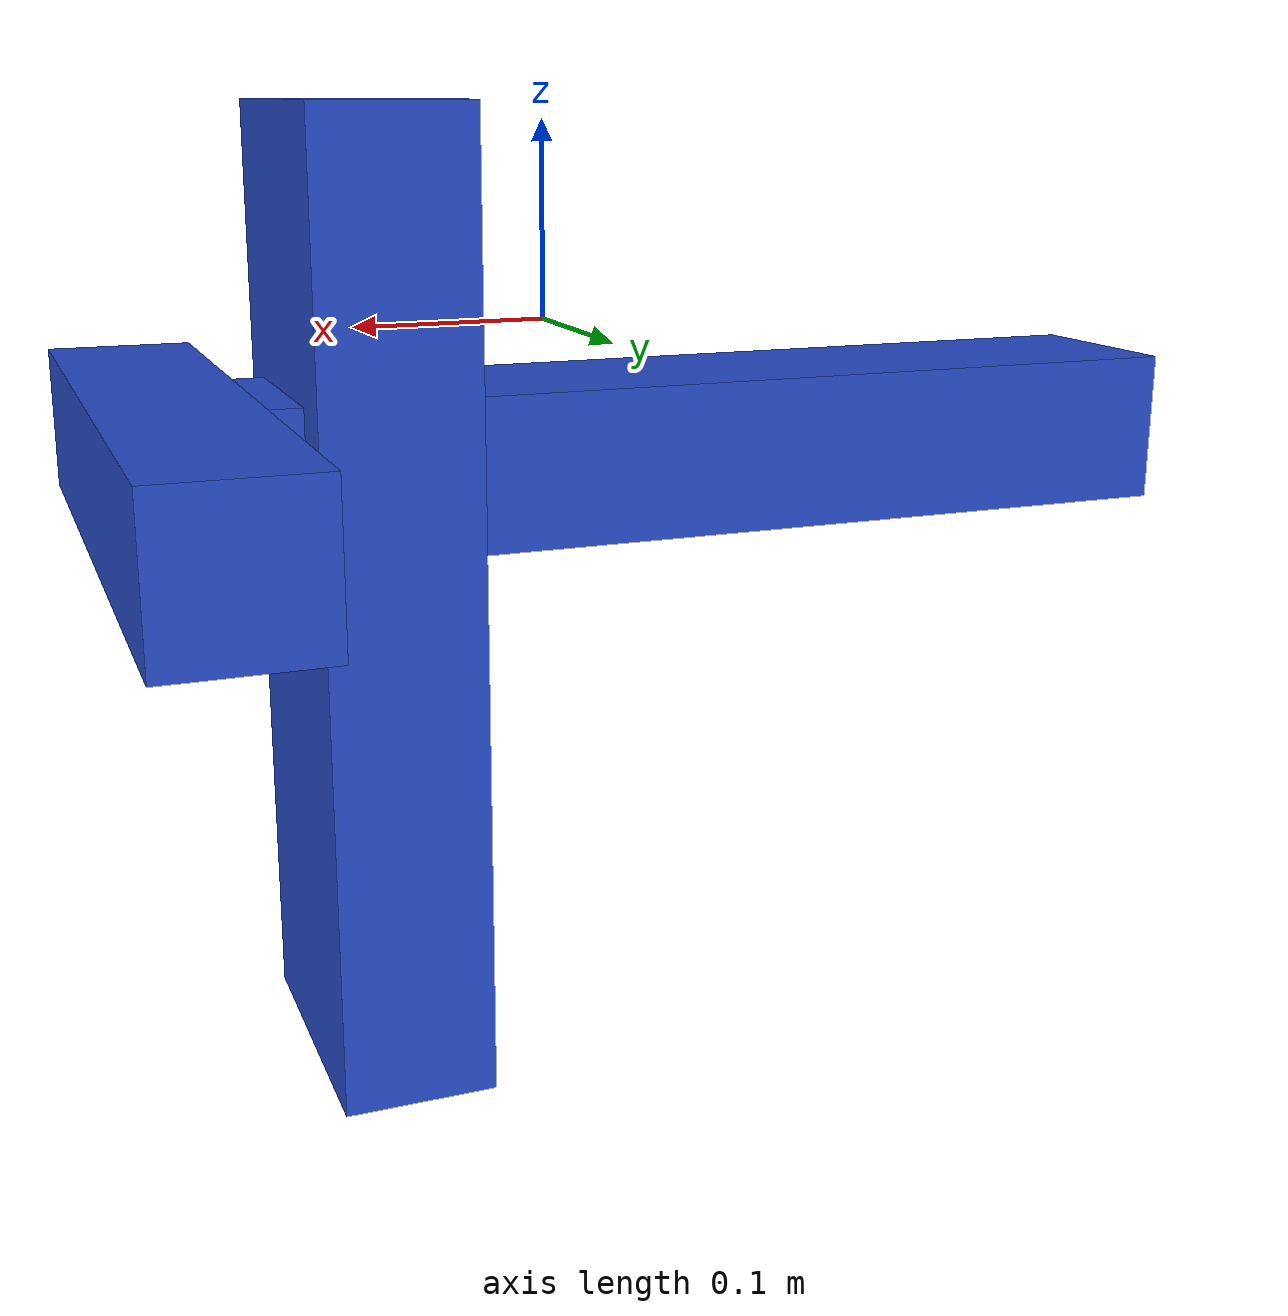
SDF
<?xml version='1.0'?>
<sdf version='1.7'>
  <model name='hook3'>
    <link name='link_0'>

      <pose>0.096667 0 -0.14 0 -0 0</pose>

      <inertial>
        <mass>0.0074989</mass>
        <inertia>
          <ixx>0.00017954</ixx>
          <ixy>0</ixy>
          <ixz>0</ixz>
          <iyy>0.0001659</iyy>
          <iyz>0</iyz>
          <izz>2.296e-05</izz>
        </inertia>
        <pose>0 0 0 0 -0 0</pose>
      </inertial>

      <kinematic>1</kinematic>

      <visual name='visual1'>
        <pose>0 0 0 0 -0 0</pose>
        <geometry>
          <box>
            <size>0.08 0.16 0.5</size>
          </box>
        </geometry>
        <material>
          <script>
            <name>Gazebo/Blue</name>
            <uri>file://media/materials/scripts/gazebo.material</uri>
          </script>
        </material>
      </visual>

      <collision name='collision1'>
        <geometry>
          <box>
            <size>0.08 0.16 0.5</size>
          </box>
        </geometry>
      </collision>

      <visual name='visual2'>
        <pose>-0.193333 0 0.07 0 -0 0</pose>
        <geometry>
          <box>
            <size>0.5 0.1 0.08</size>
          </box>
        </geometry>
        <material>
          <script>
            <name>Gazebo/Blue</name>
            <uri>file://media/materials/scripts/gazebo.material</uri>
          </script>
        </material>
      </visual>

      <collision name='collision2'>
        <pose>-0.193333 0 0.07 0 -0 0</pose>
        <geometry>
          <box>
            <size>0.5 0.1 0.08</size>
          </box>
        </geometry>
      </collision>

      <visual name='visual3'>
        <pose>0.096667 0 0.07 0 -0 0</pose>
        <geometry>
          <box>
            <size>0.08 0.4 0.080001</size>
          </box>
        </geometry>
        <material>
          <script>
            <name>Gazebo/Blue</name>
            <uri>file://media/materials/scripts/gazebo.material</uri>
          </script>
        </material>
      </visual>

      <collision name='collision3'>
        <pose>0.096667 0 0.07 0 -0 0</pose>
        <geometry>
          <box>
            <size>0.08 0.4 0.08</size>
          </box>
        </geometry>
      </collision>
    </link>
  </model>
</sdf>
